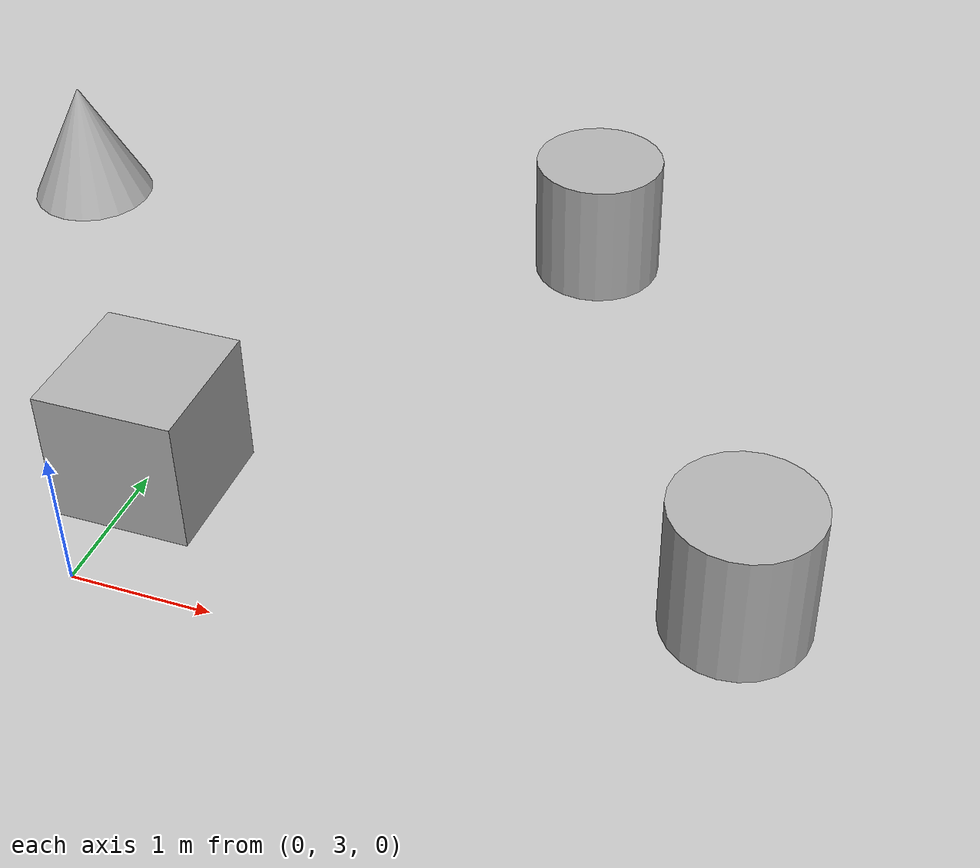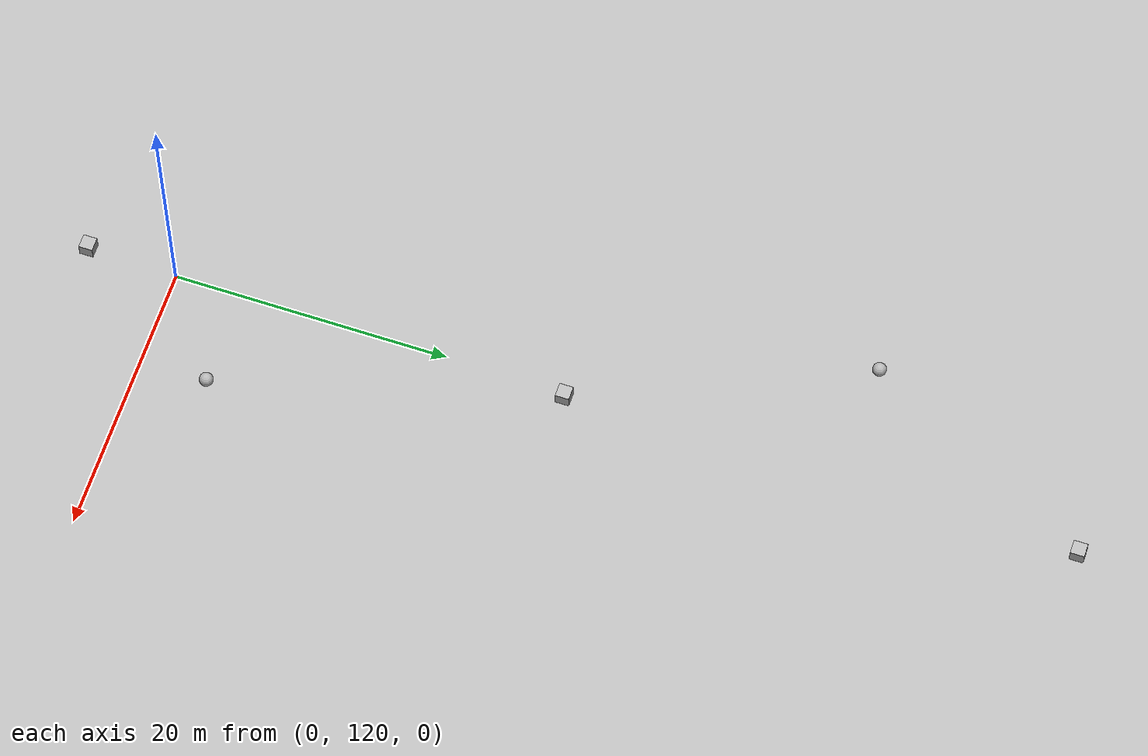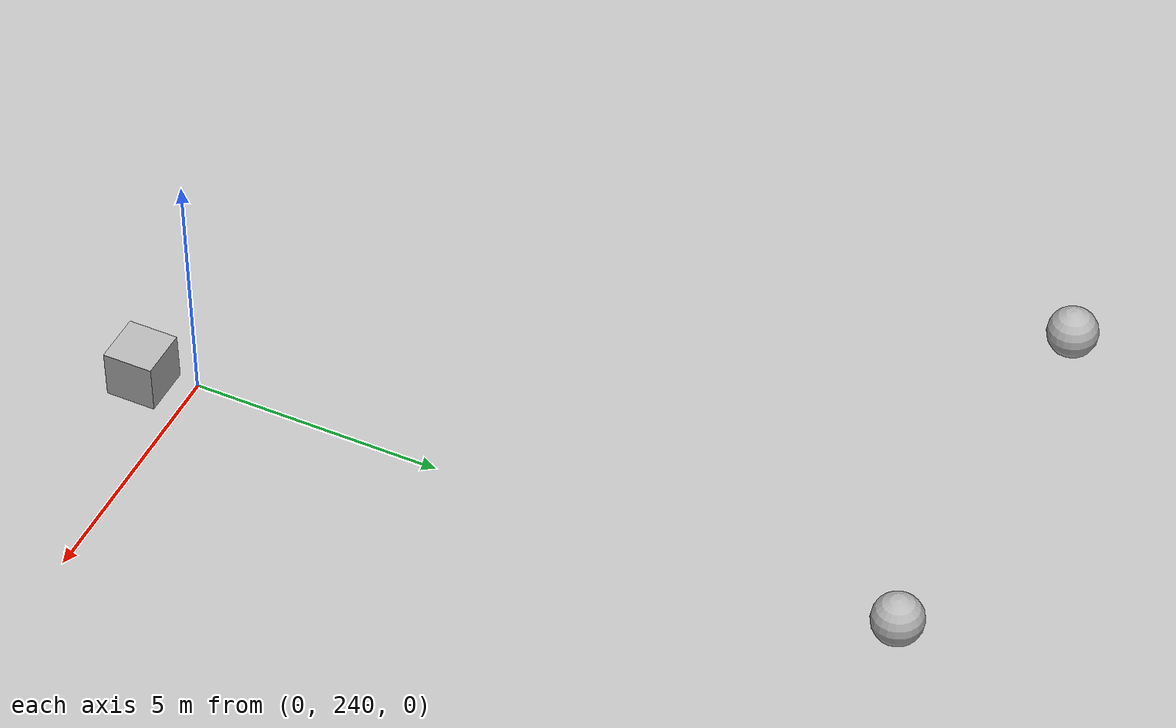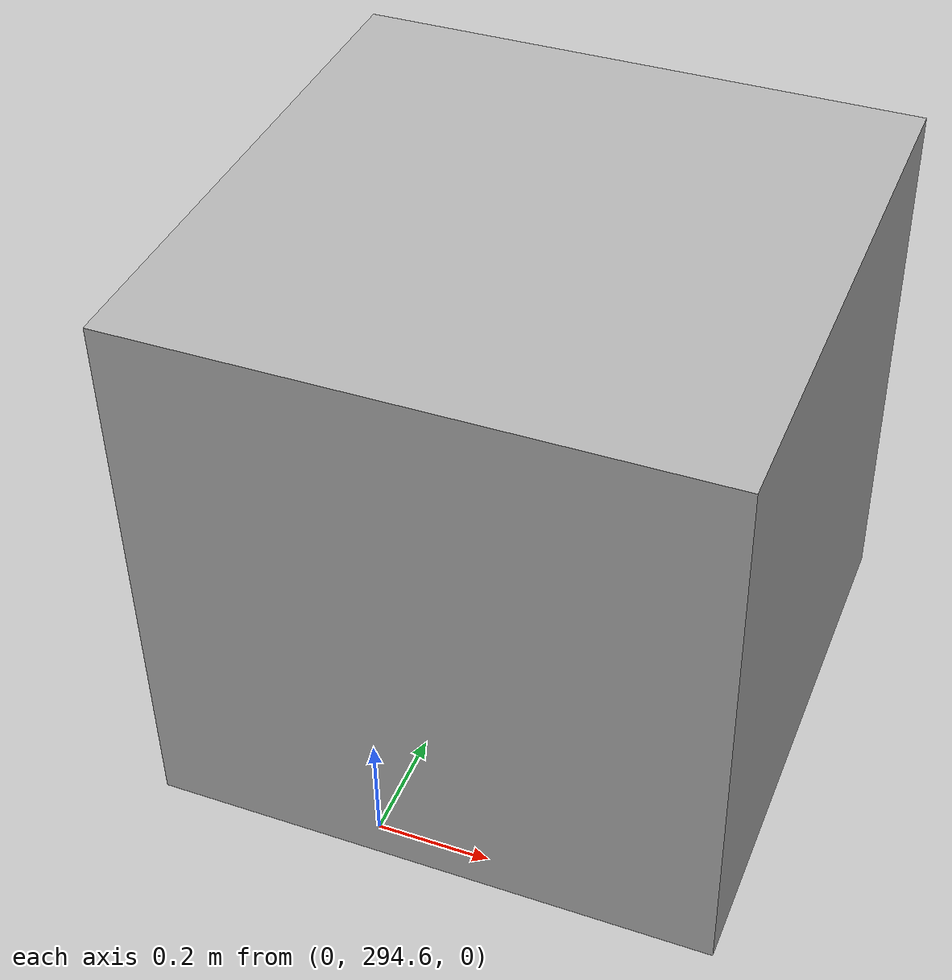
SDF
<sdf version="1.10">
 <world name="map">
  <physics name="1ms" type="ignore">
   <max_step_size>0.001</max_step_size>
   <real_time_factor>1</real_time_factor>
   <real_time_update_rate>1000</real_time_update_rate>
  </physics>
  <plugin name="gz::sim::systems::Physics" filename="gz-sim-physics-system"/>
  <plugin name="gz::sim::systems::Sensors" filename="gz-sim-sensors-system">
   <render_engine>ogre2</render_engine>
  </plugin>
  <plugin name="gz::sim::systems::UserCommands" filename="gz-sim-user-commands-system"/>
  <plugin name="gz::sim::systems::SceneBroadcaster" filename="gz-sim-scene-broadcaster-system"/>
  <plugin name="gz::sim::systems::AirPressure" filename="gz-sim-air-pressure-system"/>
  <plugin name="gz::sim::systems::AirSpeed" filename="gz-sim-air-speed-system"/>
  <plugin name="gz::sim::systems::Altimeter" filename="gz-sim-altimeter-system"/>
  <plugin name="gz::sim::systems::Imu" filename="gz-sim-imu-system"/>
  <plugin name="gz::sim::systems::Magnetometer" filename="gz-sim-magnetometer-system"/>
  <plugin name="gz::sim::systems::NavSat" filename="gz-sim-navsat-system"/>
  <scene>
   <ambient>1 1 1 1</ambient>
   <background>0.800000012 0.800000012 0.800000012 1</background>
   <shadows>true</shadows>
  </scene>
  <spherical_coordinates>
   <latitude_deg>37.394476519999998</latitude_deg>
   <longitude_deg>126.6381927</longitude_deg>
   <elevation>10</elevation>
   <heading_deg>0</heading_deg>
   <surface_model>EARTH_WGS84</surface_model>
  </spherical_coordinates>
  <gravity>0 0 -9.8000000000000007</gravity>
  <magnetic_field>5.5644999999999998e-06 2.2875799999999999e-05 -4.2388400000000002e-05</magnetic_field>
  <atmosphere type="adiabatic"/>
  <model name="cylinder">
   <pose>2.2103512287139893 7.5216798782348633 0.49999901670685171 -1.1620841524554324e-20 5.8403700806972858e-19 -6.2254181711369213e-22</pose>
   <link name="cylinder_link">
    <inertial>
     <inertia>
      <ixx>0.14580000000000001</ixx>
      <ixy>0</ixy>
      <ixz>0</ixz>
      <iyy>0.14580000000000001</iyy>
      <iyz>0</iyz>
      <izz>0.125</izz>
     </inertia>
     <mass>1</mass>
    </inertial>
    <collision name="cylinder_collision">
     <geometry><cylinder><radius>0.5</radius><length>1</length></cylinder></geometry>
    </collision>
    <visual name="cylinder_visual">
     <geometry><cylinder><radius>0.5</radius><length>1</length></cylinder></geometry>
     <material>
      <ambient>0.300000012 0.300000012 0.300000012 1</ambient>
      <diffuse>0.699999988 0.699999988 0.699999988 1</diffuse>
      <specular>1 1 1 1</specular>
     </material>
    </visual>
   </link>
   <static>false</static>
  </model>
  <model name="cone">
   <pose>-2.2766587372445319 7.2114904457941833 0.49999999988072535 1.7443549924382067e-11 -1.0590936160499674e-09 1.149711961105099e-16</pose>
   <link name="cone_link">
    <inertial>
     <inertia>
      <ixx>0.074999999999999997</ixx>
      <ixy>0</ixy>
      <ixz>0</ixz>
      <iyy>0.074999999999999997</iyy>
      <iyz>0</iyz>
      <izz>0.074999999999999997</izz>
     </inertia>
     <mass>1</mass>
    </inertial>
    <collision name="cone_collision">
     <geometry><cone><radius>0.5</radius><length>1</length></cone></geometry>
    </collision>
    <visual name="cone_visual">
     <geometry><cone><radius>0.5</radius><length>1</length></cone></geometry>
     <material>
      <ambient>0.300000012 0.300000012 0.300000012 1</ambient>
      <diffuse>0.699999988 0.699999988 0.699999988 1</diffuse>
      <specular>1 1 1 1</specular>
     </material>
    </visual>
   </link>
   <static>false</static>
  </model>
  <model name="box">
   <pose>0.078054927289485931 3.9950599670410156 0.49999901652506301 8.1732428127337589e-19 2.3483353526286806e-19 3.8771372278324618e-21</pose>
   <link name="box_link">
    <inertial>
     <inertia><ixx>0.16666</ixx><ixy>0</ixy><ixz>0</ixz><iyy>0.16666</iyy><iyz>0</iyz><izz>0.16666</izz></inertia>
     <mass>1</mass>
    </inertial>
    <collision name="box_collision"><geometry><box><size>1 1 1</size></box></geometry></collision>
    <visual name="box_visual">
     <geometry><box><size>1 1 1</size></box></geometry>
     <material>
      <ambient>0.300000012 0.300000012 0.300000012 1</ambient>
      <diffuse>0.699999988 0.699999988 0.699999988 1</diffuse>
      <specular>1 1 1 1</specular>
     </material>
    </visual>
   </link>
   <static>false</static>
  </model>
  <model name="sphere">
   <pose>-4.1518905203971732 4.1862525504543688 0.49999999020007946 6.0000049674470124e-06 2.7465250451475369e-07 8.2235696033201162e-13</pose>
   <link name="sphere_link">
    <inertial>
     <inertia>
      <ixx>0.10000000000000001</ixx>
      <ixy>0</ixy>
      <ixz>0</ixz>
      <iyy>0.10000000000000001</iyy>
      <iyz>0</iyz>
      <izz>0.10000000000000001</izz>
     </inertia>
     <mass>1</mass>
    </inertial>
    <collision name="sphere_collision"><geometry><sphere><radius>0.5</radius></sphere></geometry></collision>
    <visual name="sphere_visual">
     <geometry><sphere><radius>0.5</radius></sphere></geometry>
     <material>
      <ambient>0.300000012 0.300000012 0.300000012 1</ambient>
      <diffuse>0.699999988 0.699999988 0.699999988 1</diffuse>
      <specular>1 1 1 1</specular>
     </material>
    </visual>
   </link>
   <static>false</static>
  </model>
  <model name="cylinder_0">
   <pose>4.1811103415217366 4.0004752687810736 0.49999944883794162 -2.9895515885136561e-19 1.9366185524316042e-19 3.2340415013204127e-21</pose>
   <link name="cylinder_link">
    <inertial>
     <inertia>
      <ixx>0.14580000000000001</ixx>
      <ixy>0</ixy>
      <ixz>0</ixz>
      <iyy>0.14580000000000001</iyy>
      <iyz>0</iyz>
      <izz>0.125</izz>
     </inertia>
     <mass>1</mass>
    </inertial>
    <collision name="cylinder_collision">
     <geometry><cylinder><radius>0.5</radius><length>1</length></cylinder></geometry>
    </collision>
    <visual name="cylinder_visual">
     <geometry><cylinder><radius>0.5</radius><length>1</length></cylinder></geometry>
     <material>
      <ambient>0.300000012 0.300000012 0.300000012 1</ambient>
      <diffuse>0.699999988 0.699999988 0.699999988 1</diffuse>
      <specular>1 1 1 1</specular>
     </material>
    </visual>
   </link>
   <static>false</static>
  </model>
  <model name="box_5">
   <pose>-0.046650140126080153 113.43718942229287 0.499999426313885 6.2627114797023454e-19 4.0475844461114029e-19 9.3248670011338095e-22</pose>
   <link name="box_link">
    <inertial>
     <inertia><ixx>0.16666</ixx><ixy>0</ixy><ixz>0</ixz><iyy>0.16666</iyy><iyz>0</iyz><izz>0.16666</izz></inertia>
     <mass>1</mass>
    </inertial>
    <collision name="box_collision"><geometry><box><size>1 1 1</size></box></geometry></collision>
    <visual name="box_visual">
     <geometry><box><size>1 1 1</size></box></geometry>
     <material>
      <ambient>0.300000012 0.300000012 0.300000012 1</ambient>
      <diffuse>0.699999988 0.699999988 0.699999988 1</diffuse>
      <specular>1 1 1 1</specular>
     </material>
    </visual>
   </link>
   <static>false</static>
  </model>
  <model name="box_6">
   <pose>0.36244662578808473 148.75734554033048 0.499999426313885 6.999432343728962e-19 -8.6543896134741491e-21 1.7665459698487275e-21</pose>
   <link name="box_link">
    <inertial>
     <inertia><ixx>0.16666</ixx><ixy>0</ixy><ixz>0</ixz><iyy>0.16666</iyy><iyz>0</iyz><izz>0.16666</izz></inertia>
     <mass>1</mass>
    </inertial>
    <collision name="box_collision"><geometry><box><size>1 1 1</size></box></geometry></collision>
    <visual name="box_visual">
     <geometry><box><size>1 1 1</size></box></geometry>
     <material>
      <ambient>0.300000012 0.300000012 0.300000012 1</ambient>
      <diffuse>0.699999988 0.699999988 0.699999988 1</diffuse>
      <specular>1 1 1 1</specular>
     </material>
    </visual>
   </link>
   <static>false</static>
  </model>
  <model name="box_11">
   <pose>0.52194489706930192 185.74490183077845 0.499999426313885 3.6225212522055428e-19 -3.0689347438792258e-19 -6.9551803150010656e-22</pose>
   <link name="box_link">
    <inertial>
     <inertia><ixx>0.16666</ixx><ixy>0</ixy><ixz>0</ixz><iyy>0.16666</iyy><iyz>0</iyz><izz>0.16666</izz></inertia>
     <mass>1</mass>
    </inertial>
    <collision name="box_collision"><geometry><box><size>1 1 1</size></box></geometry></collision>
    <visual name="box_visual">
     <geometry><box><size>1 1 1</size></box></geometry>
     <material>
      <ambient>0.300000012 0.300000012 0.300000012 1</ambient>
      <diffuse>0.699999988 0.699999988 0.699999988 1</diffuse>
      <specular>1 1 1 1</specular>
     </material>
    </visual>
   </link>
   <static>false</static>
  </model>
  <model name="box_12">
   <pose>0.40514019009739677 239.06297917812546 0.499999426313885 3.2547596257454579e-19 -2.3817730803919998e-19 -5.6614252166485611e-21</pose>
   <link name="box_link">
    <inertial>
     <inertia><ixx>0.16666</ixx><ixy>0</ixy><ixz>0</ixz><iyy>0.16666</iyy><iyz>0</iyz><izz>0.16666</izz></inertia>
     <mass>1</mass>
    </inertial>
    <collision name="box_collision"><geometry><box><size>1 1 1</size></box></geometry></collision>
    <visual name="box_visual">
     <geometry><box><size>1 1 1</size></box></geometry>
     <material>
      <ambient>0.300000012 0.300000012 0.300000012 1</ambient>
      <diffuse>0.699999988 0.699999988 0.699999988 1</diffuse>
      <specular>1 1 1 1</specular>
     </material>
    </visual>
   </link>
   <static>false</static>
  </model>
  <model name="box_13">
   <pose>0.11346540276858796 295.0502015534592 0.499999426313885 6.0248733144881864e-19 1.528955635147273e-19 -3.8250487759203819e-21</pose>
   <link name="box_link">
    <inertial>
     <inertia><ixx>0.16666</ixx><ixy>0</ixy><ixz>0</ixz><iyy>0.16666</iyy><iyz>0</iyz><izz>0.16666</izz></inertia>
     <mass>1</mass>
    </inertial>
    <collision name="box_collision"><geometry><box><size>1 1 1</size></box></geometry></collision>
    <visual name="box_visual">
     <geometry><box><size>1 1 1</size></box></geometry>
     <material>
      <ambient>0.300000012 0.300000012 0.300000012 1</ambient>
      <diffuse>0.699999988 0.699999988 0.699999988 1</diffuse>
      <specular>1 1 1 1</specular>
     </material>
    </visual>
   </link>
   <static>false</static>
  </model>
  <model name="box_14">
   <pose>0.17335039483049464 268.26553304528306 0.499999426313885 4.781257687731676e-19 4.2984927196711289e-19 4.7825366126224577e-21</pose>
   <link name="box_link">
    <inertial>
     <inertia><ixx>0.16666</ixx><ixy>0</ixy><ixz>0</ixz><iyy>0.16666</iyy><iyz>0</iyz><izz>0.16666</izz></inertia>
     <mass>1</mass>
    </inertial>
    <collision name="box_collision"><geometry><box><size>1 1 1</size></box></geometry></collision>
    <visual name="box_visual">
     <geometry><box><size>1 1 1</size></box></geometry>
     <material>
      <ambient>0.300000012 0.300000012 0.300000012 1</ambient>
      <diffuse>0.699999988 0.699999988 0.699999988 1</diffuse>
      <specular>1 1 1 1</specular>
     </material>
    </visual>
   </link>
   <static>false</static>
  </model>
  <model name="sphere_3">
   <pose>-7.933966708916004 254.42551911607629 0.49999999980498194 1.5916508231505746e-18 -4.9739088223455462e-20 -3.9583630357248878e-38</pose>
   <link name="sphere_link">
    <inertial>
     <inertia>
      <ixx>0.10000000000000001</ixx>
      <ixy>0</ixy>
      <ixz>0</ixz>
      <iyy>0.10000000000000001</iyy>
      <iyz>0</iyz>
      <izz>0.10000000000000001</izz>
     </inertia>
     <mass>1</mass>
    </inertial>
    <collision name="sphere_collision"><geometry><sphere><radius>0.5</radius></sphere></geometry></collision>
    <visual name="sphere_visual">
     <geometry><sphere><radius>0.5</radius></sphere></geometry>
     <material>
      <ambient>0.300000012 0.300000012 0.300000012 1</ambient>
      <diffuse>0.699999988 0.699999988 0.699999988 1</diffuse>
      <specular>1 1 1 1</specular>
     </material>
    </visual>
   </link>
   <static>false</static>
  </model>
  <model name="sphere_4">
   <pose>0.15709611124386846 254.2593895002145 0.49999999980498194 4.7748727305390523e-18 2.9842954565869077e-19 7.1248154977729656e-37</pose>
   <link name="sphere_link">
    <inertial>
     <inertia>
      <ixx>0.10000000000000001</ixx>
      <ixy>0</ixy>
      <ixz>0</ixz>
      <iyy>0.10000000000000001</iyy>
      <iyz>0</iyz>
      <izz>0.10000000000000001</izz>
     </inertia>
     <mass>1</mass>
    </inertial>
    <collision name="sphere_collision"><geometry><sphere><radius>0.5</radius></sphere></geometry></collision>
    <visual name="sphere_visual">
     <geometry><sphere><radius>0.5</radius></sphere></geometry>
     <material>
      <ambient>0.300000012 0.300000012 0.300000012 1</ambient>
      <diffuse>0.699999988 0.699999988 0.699999988 1</diffuse>
      <specular>1 1 1 1</specular>
     </material>
    </visual>
   </link>
   <static>false</static>
  </model>
  <model name="sphere_5">
   <pose>0.31436285531135333 212.60919456999454 0.49999999980498194 -5.521938262032049e-40 9.9478176446910925e-20 1.9617590943744704e-54</pose>
   <link name="sphere_link">
    <inertial>
     <inertia>
      <ixx>0.10000000000000001</ixx>
      <ixy>0</ixy>
      <ixz>0</ixz>
      <iyy>0.10000000000000001</iyy>
      <iyz>0</iyz>
      <izz>0.10000000000000001</izz>
     </inertia>
     <mass>1</mass>
    </inertial>
    <collision name="sphere_collision"><geometry><sphere><radius>0.5</radius></sphere></geometry></collision>
    <visual name="sphere_visual">
     <geometry><sphere><radius>0.5</radius></sphere></geometry>
     <material>
      <ambient>0.300000012 0.300000012 0.300000012 1</ambient>
      <diffuse>0.699999988 0.699999988 0.699999988 1</diffuse>
      <specular>1 1 1 1</specular>
     </material>
    </visual>
   </link>
   <static>false</static>
  </model>
  <model name="sphere_6">
   <pose>-8.4465640615518858 168.81407429521215 0.49999999980498194 0 0 0</pose>
   <link name="sphere_link">
    <inertial>
     <inertia>
      <ixx>0.10000000000000001</ixx>
      <ixy>0</ixy>
      <ixz>0</ixz>
      <iyy>0.10000000000000001</iyy>
      <iyz>0</iyz>
      <izz>0.10000000000000001</izz>
     </inertia>
     <mass>1</mass>
    </inertial>
    <collision name="sphere_collision"><geometry><sphere><radius>0.5</radius></sphere></geometry></collision>
    <visual name="sphere_visual">
     <geometry><sphere><radius>0.5</radius></sphere></geometry>
     <material>
      <ambient>0.300000012 0.300000012 0.300000012 1</ambient>
      <diffuse>0.699999988 0.699999988 0.699999988 1</diffuse>
      <specular>1 1 1 1</specular>
     </material>
    </visual>
   </link>
   <static>false</static>
  </model>
  <model name="sphere_7">
   <pose>7.1349041473801904 124.91811110462996 0.49999999980498194 1.5915710842379028e-18 3.9790273842355965e-19 8.8322430594314312e-37</pose>
   <link name="sphere_link">
    <inertial>
     <inertia>
      <ixx>0.10000000000000001</ixx>
      <ixy>0</ixy>
      <ixz>0</ixz>
      <iyy>0.10000000000000001</iyy>
      <iyz>0</iyz>
      <izz>0.10000000000000001</izz>
     </inertia>
     <mass>1</mass>
    </inertial>
    <collision name="sphere_collision"><geometry><sphere><radius>0.5</radius></sphere></geometry></collision>
    <visual name="sphere_visual">
     <geometry><sphere><radius>0.5</radius></sphere></geometry>
     <material>
      <ambient>0.300000012 0.300000012 0.300000012 1</ambient>
      <diffuse>0.699999988 0.699999988 0.699999988 1</diffuse>
      <specular>1 1 1 1</specular>
     </material>
    </visual>
   </link>
   <static>false</static>
  </model>
  <light name="sun" type="directional">
   <pose>0 0 10 0 0 0</pose>
   <intensity>1</intensity>
   <direction>-0.5 0.10000000000000001 -0.90000000000000002</direction>
   <diffuse>0.800000012 0.800000012 0.800000012 1</diffuse>
   <specular>0.800000012 0.800000012 0.800000012 1</specular>
   <attenuation>
    <range>1000</range>
    <linear>0.01</linear>
    <constant>0.90000000000000002</constant>
    <quadratic>0.001</quadratic>
   </attenuation>
   <spot><inner_angle>0</inner_angle><outer_angle>0</outer_angle><falloff>0</falloff></spot>
  </light>
 </world>
</sdf>
